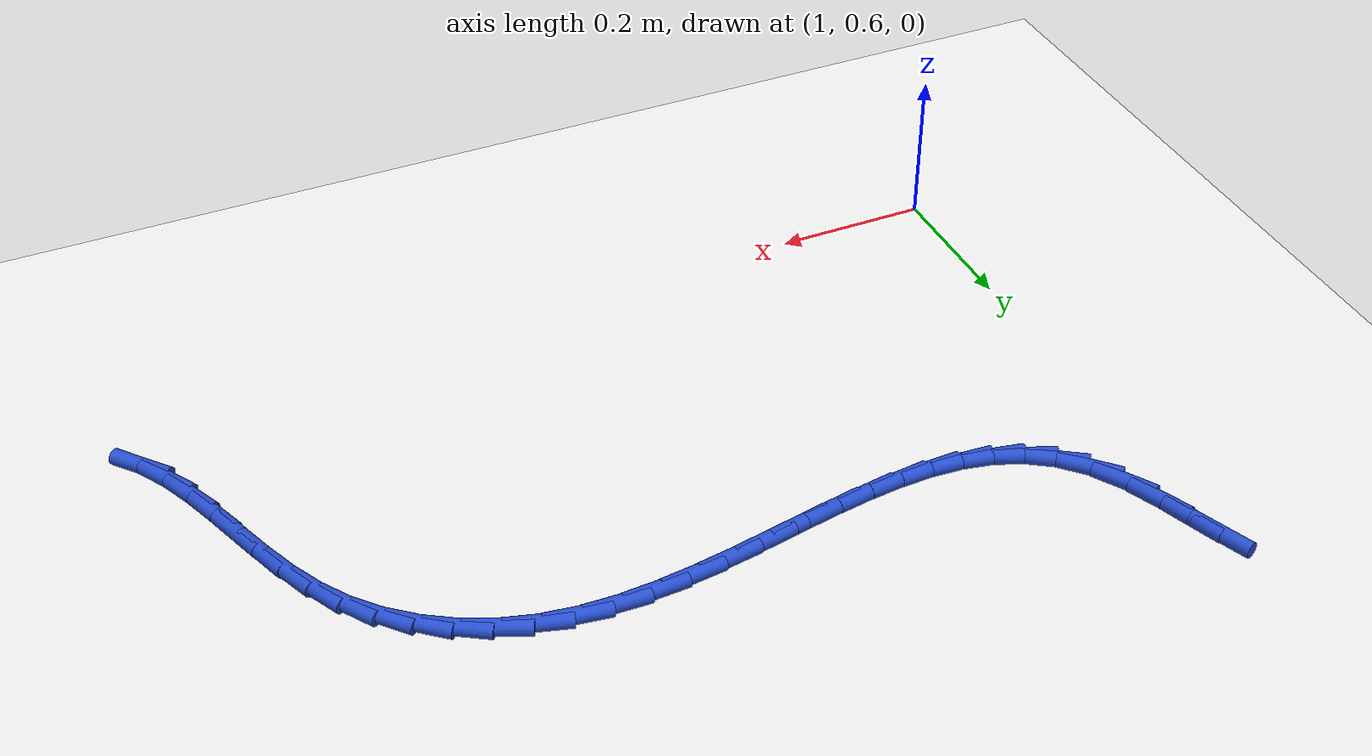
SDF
<sdf version="1.6">
 <world name="default">
  <model name="ground_plane">
   <static>1</static>
   <link name="link">
    <collision name="collision">
     <geometry><plane><normal>0 0 1</normal><size>100 100</size></plane></geometry>
     <surface><friction><ode><mu>100</mu><mu2>50</mu2></ode></friction></surface>
    </collision>
    <visual name="visual">
     <cast_shadows>0</cast_shadows>
     <geometry><plane><normal>0 0 1</normal><size>100 100</size></plane></geometry>
     <material>
      <script><uri>file://media/materials/scripts/gazebo.material</uri><name>Gazebo/WhiteGlow</name></script>
     </material>
    </visual>
   </link>
  </model>
  <model name="line">
   <link name="link_50">
    <pose>1.0037374971588184 1.3178521475267506 0.01 0 1.57 -1.1802746688257668</pose>
    <collision name="collision">
     <geometry><cylinder><radius>0.01</radius><length>0.08</length></cylinder></geometry>
    </collision>
    <visual name="visual">
     <material>
      <script><name>Gazebo/Blue</name><uri>file://media/materials/scripts/gazebo.material</uri></script>
     </material>
     <geometry><cylinder><radius>0.01</radius><length>0.08</length></cylinder></geometry>
    </visual>
   </link>
   <link name="link_51">
    <pose>1.0177650497429502 1.283776970344599 0.01 0 1.57 -1.2060451095904092</pose>
    <collision name="collision">
     <geometry><cylinder><radius>0.01</radius><length>0.08</length></cylinder></geometry>
    </collision>
    <visual name="visual">
     <material>
      <script><name>Gazebo/Blue</name><uri>file://media/materials/scripts/gazebo.material</uri></script>
     </material>
     <geometry><cylinder><radius>0.01</radius><length>0.08</length></cylinder></geometry>
    </visual>
   </link>
   <link name="link_52">
    <pose>1.034246783044417 1.2406126506751738 0.01 0 1.57 -1.1465453344732879</pose>
    <collision name="collision">
     <geometry><cylinder><radius>0.01</radius><length>0.08</length></cylinder></geometry>
    </collision>
    <visual name="visual">
     <material>
      <script><name>Gazebo/Blue</name><uri>file://media/materials/scripts/gazebo.material</uri></script>
     </material>
     <geometry><cylinder><radius>0.01</radius><length>0.08</length></cylinder></geometry>
    </visual>
   </link>
   <link name="link_53">
    <pose>1.0540830498803222 1.1966961133009113 0.01 0 1.57 -0.9964386643646291</pose>
    <collision name="collision">
     <geometry><cylinder><radius>0.01</radius><length>0.08</length></cylinder></geometry>
    </collision>
    <visual name="visual">
     <material>
      <script><name>Gazebo/Blue</name><uri>file://media/materials/scripts/gazebo.material</uri></script>
     </material>
     <geometry><cylinder><radius>0.01</radius><length>0.08</length></cylinder></geometry>
    </visual>
   </link>
   <link name="link_54">
    <pose>1.0780716258764036 1.1596271535343536 0.01 0 1.57 -0.7899394217756761</pose>
    <collision name="collision">
     <geometry><cylinder><radius>0.01</radius><length>0.08</length></cylinder></geometry>
    </collision>
    <visual name="visual">
     <material>
      <script><name>Gazebo/Blue</name><uri>file://media/materials/scripts/gazebo.material</uri></script>
     </material>
     <geometry><cylinder><radius>0.01</radius><length>0.08</length></cylinder></geometry>
    </visual>
   </link>
   <link name="link_55">
    <pose>1.1062072440000357 1.1312348256375389 0.01 0 1.57 -0.5735198520284591</pose>
    <collision name="collision">
     <geometry><cylinder><radius>0.01</radius><length>0.08</length></cylinder></geometry>
    </collision>
    <visual name="visual">
     <material>
      <script><name>Gazebo/Blue</name><uri>file://media/materials/scripts/gazebo.material</uri></script>
     </material>
     <geometry><cylinder><radius>0.01</radius><length>0.08</length></cylinder></geometry>
    </visual>
   </link>
   <link name="link_56">
    <pose>1.13810634460546 1.1106297371138358 0.01 0 1.57 -0.37099968447056125</pose>
    <collision name="collision">
     <geometry><cylinder><radius>0.01</radius><length>0.08</length></cylinder></geometry>
    </collision>
    <visual name="visual">
     <material>
      <script><name>Gazebo/Blue</name><uri>file://media/materials/scripts/gazebo.material</uri></script>
     </material>
     <geometry><cylinder><radius>0.01</radius><length>0.08</length></cylinder></geometry>
    </visual>
   </link>
   <link name="link_57">
    <pose>1.1733831527396918 1.096906576057819 0.01 0 1.57 -0.19972609045565312</pose>
    <collision name="collision">
     <geometry><cylinder><radius>0.01</radius><length>0.08</length></cylinder></geometry>
    </collision>
    <visual name="visual">
     <material>
      <script><name>Gazebo/Blue</name><uri>file://media/materials/scripts/gazebo.material</uri></script>
     </material>
     <geometry><cylinder><radius>0.01</radius><length>0.08</length></cylinder></geometry>
    </visual>
   </link>
   <link name="link_58">
    <pose>1.211651893449744 1.0891600305640612 0.01 0 1.57 -0.06535628984153605</pose>
    <collision name="collision">
     <geometry><cylinder><radius>0.01</radius><length>0.08</length></cylinder></geometry>
    </collision>
    <visual name="visual">
     <material>
      <script><name>Gazebo/Blue</name><uri>file://media/materials/scripts/gazebo.material</uri></script>
     </material>
     <geometry><cylinder><radius>0.01</radius><length>0.08</length></cylinder></geometry>
    </visual>
   </link>
   <link name="link_59">
    <pose>1.2525267917826328 1.0864847887271372 0.01 0 1.57 0.0345781648088882</pose>
    <collision name="collision">
     <geometry><cylinder><radius>0.01</radius><length>0.08</length></cylinder></geometry>
    </collision>
    <visual name="visual">
     <material>
      <script><name>Gazebo/Blue</name><uri>file://media/materials/scripts/gazebo.material</uri></script>
     </material>
     <geometry><cylinder><radius>0.01</radius><length>0.08</length></cylinder></geometry>
    </visual>
   </link>
   <link name="link_60">
    <pose>1.2956220727853711 1.08797553864162 0.01 0 1.57 0.10536049077298286</pose>
    <collision name="collision">
     <geometry><cylinder><radius>0.01</radius><length>0.08</length></cylinder></geometry>
    </collision>
    <visual name="visual">
     <material>
      <script><name>Gazebo/Blue</name><uri>file://media/materials/scripts/gazebo.material</uri></script>
     </material>
     <geometry><cylinder><radius>0.01</radius><length>0.08</length></cylinder></geometry>
    </visual>
   </link>
   <link name="link_61">
    <pose>1.3405519615049741 1.0927269684020842 0.01 0 1.57 0.15205128804951173</pose>
    <collision name="collision">
     <geometry><cylinder><radius>0.01</radius><length>0.08</length></cylinder></geometry>
    </collision>
    <visual name="visual">
     <material>
      <script><name>Gazebo/Blue</name><uri>file://media/materials/scripts/gazebo.material</uri></script>
     </material>
     <geometry><cylinder><radius>0.01</radius><length>0.08</length></cylinder></geometry>
    </visual>
   </link>
   <link name="link_62">
    <pose>1.3869306829884562 1.099833766103103 0.01 0 1.57 0.1784468122634462</pose>
    <collision name="collision">
     <geometry><cylinder><radius>0.01</radius><length>0.08</length></cylinder></geometry>
    </collision>
    <visual name="visual">
     <material>
      <script><name>Gazebo/Blue</name><uri>file://media/materials/scripts/gazebo.material</uri></script>
     </material>
     <geometry><cylinder><radius>0.01</radius><length>0.08</length></cylinder></geometry>
    </visual>
   </link>
   <link name="link_63">
    <pose>1.4343724622828316 1.1083906198392504 0.01 0 1.57 0.18693897201468798</pose>
    <collision name="collision">
     <geometry><cylinder><radius>0.01</radius><length>0.08</length></cylinder></geometry>
    </collision>
    <visual name="visual">
     <material>
      <script><name>Gazebo/Blue</name><uri>file://media/materials/scripts/gazebo.material</uri></script>
     </material>
     <geometry><cylinder><radius>0.01</radius><length>0.08</length></cylinder></geometry>
    </visual>
   </link>
   <link name="link_64">
    <pose>1.4824915244351147 1.1174922177051008 0.01 0 1.57 0.17863566192941252</pose>
    <collision name="collision">
     <geometry><cylinder><radius>0.01</radius><length>0.08</length></cylinder></geometry>
    </collision>
    <visual name="visual">
     <material>
      <script><name>Gazebo/Blue</name><uri>file://media/materials/scripts/gazebo.material</uri></script>
     </material>
     <geometry><cylinder><radius>0.01</radius><length>0.08</length></cylinder></geometry>
    </visual>
   </link>
   <link name="link_65">
    <pose>1.5309020944923195 1.126233247795227 0.01 0 1.57 0.1534958237025379</pose>
    <collision name="collision">
     <geometry><cylinder><radius>0.01</radius><length>0.08</length></cylinder></geometry>
    </collision>
    <visual name="visual">
     <material>
      <script><name>Gazebo/Blue</name><uri>file://media/materials/scripts/gazebo.material</uri></script>
     </material>
     <geometry><cylinder><radius>0.01</radius><length>0.08</length></cylinder></geometry>
    </visual>
   </link>
   <link name="link_66">
    <pose>1.5792183975014606 1.1337083982042033 0.01 0 1.57 0.11042632487577428</pose>
    <collision name="collision">
     <geometry><cylinder><radius>0.01</radius><length>0.08</length></cylinder></geometry>
    </collision>
    <visual name="visual">
     <material>
      <script><name>Gazebo/Blue</name><uri>file://media/materials/scripts/gazebo.material</uri></script>
     </material>
     <geometry><cylinder><radius>0.01</radius><length>0.08</length></cylinder></geometry>
    </visual>
   </link>
   <link name="link_67">
    <pose>1.6270546585095529 1.1390123570266035 0.01 0 1.57 0.0473869867652983</pose>
    <collision name="collision">
     <geometry><cylinder><radius>0.01</radius><length>0.08</length></cylinder></geometry>
    </collision>
    <visual name="visual">
     <material>
      <script><name>Gazebo/Blue</name><uri>file://media/materials/scripts/gazebo.material</uri></script>
     </material>
     <geometry><cylinder><radius>0.01</radius><length>0.08</length></cylinder></geometry>
    </visual>
   </link>
   <link name="link_68">
    <pose>1.6740251025636104 1.1412398123570016 0.01 0 1.57 -0.038353975724134015</pose>
    <collision name="collision">
     <geometry><cylinder><radius>0.01</radius><length>0.08</length></cylinder></geometry>
    </collision>
    <visual name="visual">
     <material>
      <script><name>Gazebo/Blue</name><uri>file://media/materials/scripts/gazebo.material</uri></script>
     </material>
     <geometry><cylinder><radius>0.01</radius><length>0.08</length></cylinder></geometry>
    </visual>
   </link>
   <link name="link_69">
    <pose>1.719743954710647 1.1394854522899707 0.01 0 1.57 -0.14941839314027158</pose>
    <collision name="collision">
     <geometry><cylinder><radius>0.01</radius><length>0.08</length></cylinder></geometry>
    </collision>
    <visual name="visual">
     <material>
      <script><name>Gazebo/Blue</name><uri>file://media/materials/scripts/gazebo.material</uri></script>
     </material>
     <geometry><cylinder><radius>0.01</radius><length>0.08</length></cylinder></geometry>
    </visual>
   </link>
   <link name="link_70">
    <pose>1.7638250343301367 1.1328494698820264 0.01 0 1.57 -0.2786030383575921</pose>
    <collision name="collision">
     <geometry><cylinder><radius>0.01</radius><length>0.08</length></cylinder></geometry>
    </collision>
    <visual name="visual">
     <material>
      <script><name>Gazebo/Blue</name><uri>file://media/materials/scripts/gazebo.material</uri></script>
     </material>
     <geometry><cylinder><radius>0.01</radius><length>0.08</length></cylinder></geometry>
    </visual>
   </link>
   <link name="link_71">
    <pose>1.8058530065400327 1.1208276853565793 0.01 0 1.57 -0.411804718498776</pose>
    <collision name="collision">
     <geometry><cylinder><radius>0.01</radius><length>0.08</length></cylinder></geometry>
    </collision>
    <visual name="visual">
     <material>
      <script><name>Gazebo/Blue</name><uri>file://media/materials/scripts/gazebo.material</uri></script>
     </material>
     <geometry><cylinder><radius>0.01</radius><length>0.08</length></cylinder></geometry>
    </visual>
   </link>
   <link name="link_72">
    <pose>1.8453643375607671 1.1035699843216642 0.01 0 1.57 -0.547763148569805</pose>
    <collision name="collision">
     <geometry><cylinder><radius>0.01</radius><length>0.08</length></cylinder></geometry>
    </collision>
    <visual name="visual">
     <material>
      <script><name>Gazebo/Blue</name><uri>file://media/materials/scripts/gazebo.material</uri></script>
     </material>
     <geometry><cylinder><radius>0.01</radius><length>0.08</length></cylinder></geometry>
    </visual>
   </link>
   <link name="link_73">
    <pose>1.8818909745806631 1.0812875762459606 0.01 0 1.57 -0.6863712183992837</pose>
    <collision name="collision">
     <geometry><cylinder><radius>0.01</radius><length>0.08</length></cylinder></geometry>
    </collision>
    <visual name="visual">
     <material>
      <script><name>Gazebo/Blue</name><uri>file://media/materials/scripts/gazebo.material</uri></script>
     </material>
     <geometry><cylinder><radius>0.01</radius><length>0.08</length></cylinder></geometry>
    </visual>
   </link>
   <link name="link_74">
    <pose>1.9149648647880422 1.0541916705981473 0.01 0 1.57 -0.827198770863257</pose>
    <collision name="collision">
     <geometry><cylinder><radius>0.01</radius><length>0.08</length></cylinder></geometry>
    </collision>
    <visual name="visual">
     <material>
      <script><name>Gazebo/Blue</name><uri>file://media/materials/scripts/gazebo.material</uri></script>
     </material>
     <geometry><cylinder><radius>0.01</radius><length>0.08</length></cylinder></geometry>
    </visual>
   </link>
   <link name="link_75">
    <pose>1.9441179553712273 1.0224934768469034 0.01 0 1.57 -0.9681049488302428</pose>
    <collision name="collision">
     <geometry><cylinder><radius>0.01</radius><length>0.08</length></cylinder></geometry>
    </collision>
    <visual name="visual">
     <material>
      <script><name>Gazebo/Blue</name><uri>file://media/materials/scripts/gazebo.material</uri></script>
     </material>
     <geometry><cylinder><radius>0.01</radius><length>0.08</length></cylinder></geometry>
    </visual>
   </link>
   <link name="link_76">
    <pose>1.9689297718805145 0.9864347777618683 0.01 0 1.57 -1.0857923786347483</pose>
    <collision name="collision">
     <geometry><cylinder><radius>0.01</radius><length>0.08</length></cylinder></geometry>
    </collision>
    <visual name="visual">
     <material>
      <script><name>Gazebo/Blue</name><uri>file://media/materials/scripts/gazebo.material</uri></script>
     </material>
     <geometry><cylinder><radius>0.01</radius><length>0.08</length></cylinder></geometry>
    </visual>
   </link>
   <link name="link_77">
    <pose>1.9898187080595495 0.9467964030381781 0.01 0 1.57 -1.163647870618194</pose>
    <collision name="collision">
     <geometry><cylinder><radius>0.01</radius><length>0.08</length></cylinder></geometry>
    </collision>
    <visual name="visual">
     <material>
      <script><name>Gazebo/Blue</name><uri>file://media/materials/scripts/gazebo.material</uri></script>
     </material>
     <geometry><cylinder><radius>0.01</radius><length>0.08</length></cylinder></geometry>
    </visual>
   </link>
   <link name="link_78">
    <pose>2.0079207113468343 0.9048202740134405 0.01 0 1.57 -1.2053691886753586</pose>
    <collision name="collision">
     <geometry><cylinder><radius>0.01</radius><length>0.08</length></cylinder></geometry>
    </collision>
    <visual name="visual">
     <material>
      <script><name>Gazebo/Blue</name><uri>file://media/materials/scripts/gazebo.material</uri></script>
     </material>
     <geometry><cylinder><radius>0.01</radius><length>0.08</length></cylinder></geometry>
    </visual>
   </link>
   <link name="link_79">
    <pose>2.024394858906696 0.8617631749175427 0.01 0 1.57 -1.2135622303266547</pose>
    <collision name="collision">
     <geometry><cylinder><radius>0.01</radius><length>0.08</length></cylinder></geometry>
    </collision>
    <visual name="visual">
     <material>
      <script><name>Gazebo/Blue</name><uri>file://media/materials/scripts/gazebo.material</uri></script>
     </material>
     <geometry><cylinder><radius>0.01</radius><length>0.08</length></cylinder></geometry>
    </visual>
   </link>
   <link name="link_80">
    <pose>2.0404002279034636 0.8188818899803719 0.01 0 1.57 -1.1878756528247416</pose>
    <collision name="collision">
     <geometry><cylinder><radius>0.01</radius><length>0.08</length></cylinder></geometry>
    </collision>
    <visual name="visual">
     <material>
      <script><name>Gazebo/Blue</name><uri>file://media/materials/scripts/gazebo.material</uri></script>
     </material>
     <geometry><cylinder><radius>0.01</radius><length>0.08</length></cylinder></geometry>
    </visual>
   </link>
   <link name="link_81">
    <pose>2.0570958955014644 0.7774332034318159 0.01 0 1.57 -1.1245231275320537</pose>
    <collision name="collision">
     <geometry><cylinder><radius>0.01</radius><length>0.08</length></cylinder></geometry>
    </collision>
    <visual name="visual">
     <material>
      <script><name>Gazebo/Blue</name><uri>file://media/materials/scripts/gazebo.material</uri></script>
     </material>
     <geometry><cylinder><radius>0.01</radius><length>0.08</length></cylinder></geometry>
    </visual>
   </link>
   <link name="link_82">
    <pose>2.075640938865028 0.7386738995017615 0.01 0 1.57 -1.0164367772035008</pose>
    <collision name="collision">
     <geometry><cylinder><radius>0.01</radius><length>0.08</length></cylinder></geometry>
    </collision>
    <visual name="visual">
     <material>
      <script><name>Gazebo/Blue</name><uri>file://media/materials/scripts/gazebo.material</uri></script>
     </material>
     <geometry><cylinder><radius>0.01</radius><length>0.08</length></cylinder></geometry>
    </visual>
   </link>
   <link name="link_83">
    <pose>2.0971944351584804 0.7038607624200963 0.01 0 1.57 -0.8555714627965555</pose>
    <collision name="collision">
     <geometry><cylinder><radius>0.01</radius><length>0.08</length></cylinder></geometry>
    </collision>
    <visual name="visual">
     <material>
      <script><name>Gazebo/Blue</name><uri>file://media/materials/scripts/gazebo.material</uri></script>
     </material>
     <geometry><cylinder><radius>0.01</radius><length>0.08</length></cylinder></geometry>
    </visual>
   </link>
  </model>
 </world>
</sdf>
